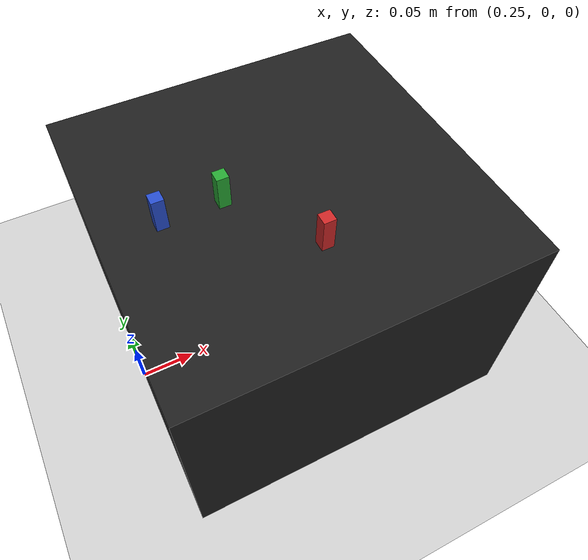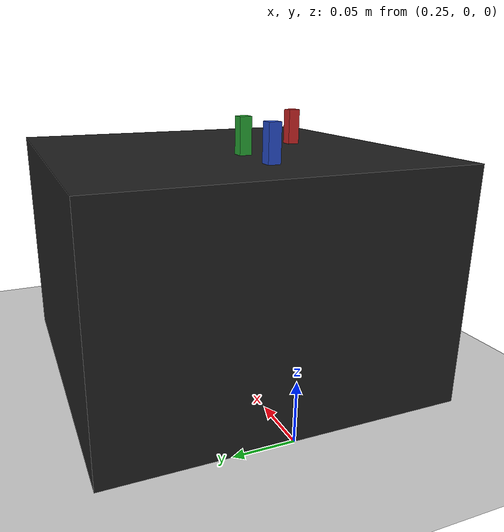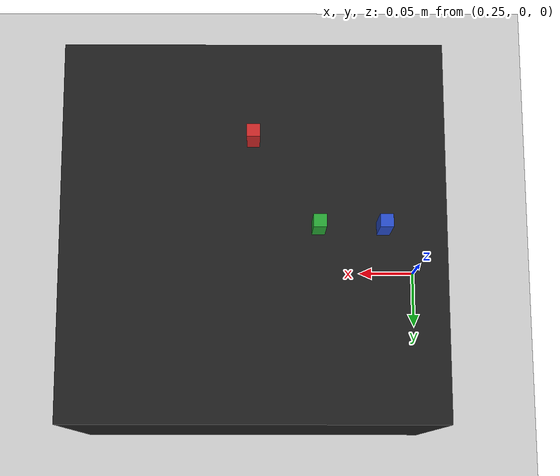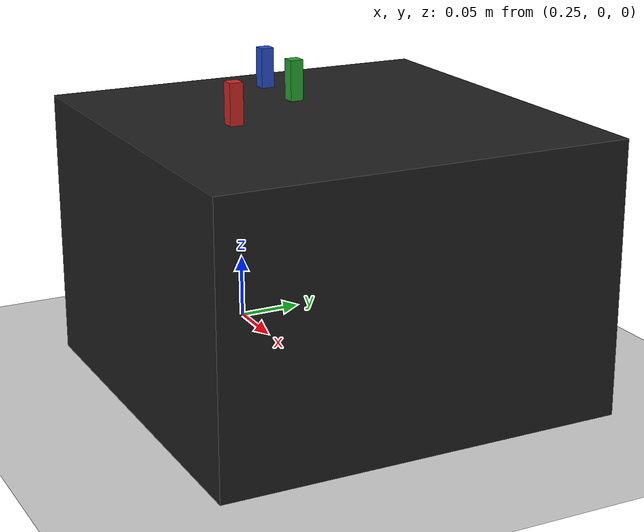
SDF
<?xml version='1.0' ?>
<sdf version='1.4'>
  <world name='empty'>
    <!-- A global light source -->
    <include>
      <uri>model://sun</uri>
    </include>

    <!-- A ground plane -->
    <include>
      <uri>model://ground_plane</uri>
    </include>

    <!-- Physics settings for simulation -->
    <physics type='ode'>
      <max_step_size>0.001</max_step_size>
      <real_time_factor>1</real_time_factor>
      <real_time_update_rate>1000</real_time_update_rate>
      <gravity>0 0 -9.81</gravity>
    </physics>

    <model name='box_1'>
      <pose frame=''>0.30 0.0 0.2165 0 0 0</pose>
      <link name='link'>
        <inertial>
          <mass>0.01</mass>
          <inertia>
            <ixx>0.00166667</ixx>
            <ixy>0</ixy>
            <ixz>0</ixz>
            <iyy>0.00166667</iyy>
            <iyz>0</iyz>
            <izz>0.00506667</izz>
          </inertia>
        </inertial>
        <collision name='collision'>
          <geometry>
            <box>
              <size>0.01 0.01 0.03</size>
            </box>
          </geometry>
          <max_contacts>10</max_contacts>
          <surface>
                   <friction>
                     <ode>
                       <mu>100.0</mu>
                       <mu2>100.0</mu2>
                     </ode>
                   </friction>
                   <contact>
                     <ode>
                       <kp>10000000.0</kp>
                       <kd>1.0</kd>
                       <min_depth>0.001</min_depth>
                       <max_vel>0.1</max_vel>
                     </ode>
                   </contact>
           </surface>
        </collision>
        <visual name='visual'>
          <geometry>
            <box>
              <size>0.01 0.01 0.03</size>
            </box>
          </geometry>
          <material>
            <script>
              <name>Gazebo/Blue</name>
              <uri>file://media/materials/scripts/gazebo.material</uri>
            </script>
          </material>
        </visual>
        <self_collide>0</self_collide>
        <kinematic>0</kinematic>
        <gravity>1</gravity>
         <static>0</static>
      </link>
    </model>

        <model name='box_2'>
       <pose frame=''>0.35 0.0 0.2165 0 0 0</pose>
      <link name='link'>
        <inertial>
          <mass>0.01</mass>
          <inertia>
            <ixx>0.00166667</ixx>
            <ixy>0</ixy>
            <ixz>0</ixz>
            <iyy>0.00166667</iyy>
            <iyz>0</iyz>
            <izz>0.00506667</izz>
          </inertia>
        </inertial>
        <collision name='collision'>
          <geometry>
            <box>
              <size>0.01 0.01 0.03</size>
            </box>
          </geometry>
          <max_contacts>10</max_contacts>
          <surface>
                   <friction>
                     <ode>
                       <mu>100.0</mu>
                       <mu2>100.0</mu2>
                     </ode>
                   </friction>
                   <contact>
                     <ode>
                       <kp>10000000.0</kp>
                       <kd>1.0</kd>
                       <min_depth>0.001</min_depth>
                       <max_vel>0.1</max_vel>
                     </ode>
                   </contact>
           </surface>
        </collision>
        <visual name='visual'>
          <geometry>
            <box>
              <size>0.01 0.01 0.03</size>
            </box>
          </geometry>
          <material>
            <script>
              <name>Gazebo/Green</name>
              <uri>file://media/materials/scripts/gazebo.material</uri>
            </script>
          </material>
        </visual>
        <self_collide>0</self_collide>
        <kinematic>0</kinematic>
        <gravity>1</gravity>
         <static>0</static>
      </link>
    </model>

      <model name='box_3'>
       <pose frame=''>0.40 -0.07 0.2165 0 0 0</pose>
      <link name='link'>
        <inertial>
          <mass>0.01</mass>
          <inertia>
            <ixx>0.00166667</ixx>
            <ixy>0</ixy>
            <ixz>0</ixz>
            <iyy>0.00166667</iyy>
            <iyz>0</iyz>
            <izz>0.00506667</izz>
          </inertia>
        </inertial>
        <collision name='collision'>
          <geometry>
            <box>
              <size>0.01 0.01 0.03</size>
            </box>
          </geometry>
          <max_contacts>10</max_contacts>
          <surface>
                   <friction>
                     <ode>
                       <mu>100.0</mu>
                       <mu2>100.0</mu2>
                     </ode>
                   </friction>
                   <contact>
                     <ode>
                       <kp>10000000.0</kp>
                       <kd>1.0</kd>
                       <min_depth>0.001</min_depth>
                       <max_vel>0.1</max_vel>
                     </ode>
                   </contact>
           </surface>
        </collision>
        <visual name='visual'>
          <geometry>
            <box>
              <size>0.01 0.01 0.03</size>
            </box>
          </geometry>
          <material>
            <script>
              <name>Gazebo/Red</name>
              <uri>file://media/materials/scripts/gazebo.material</uri>
            </script>
          </material>
        </visual>
        <self_collide>0</self_collide>
        <kinematic>0</kinematic>
        <gravity>1</gravity>
         <static>0</static>
      </link>
    </model>

   <model name='table_box_model'>
      <static>true</static>
      <pose frame=''>0.40 0.0 0.1 0 -0 1.5707963265</pose>
      <link name='table_box_link'>
        <inertial>
          <mass>1</mass>
          <inertia>
            <ixx>0.166667</ixx>
            <ixy>0</ixy>
            <ixz>0</ixz>
            <iyy>0.166667</iyy>
            <iyz>0</iyz>
            <izz>0.166667</izz>
          </inertia>
        </inertial>
        <collision name='collision'>
          <geometry>
            <box>
              <size>0.30 0.30 0.2</size>
            </box>
          </geometry>
          <max_contacts>10</max_contacts>
          <surface>
            <contact>
              <ode/>
            </contact>
            <bounce/>
            <friction>
              <ode>
                <mu>0.6</mu>
                <mu2>0.6</mu2>
              </ode>
              <torsional>
                <ode/>
              </torsional>
            </friction>
          </surface>
        </collision>
        <visual name='visual'>
          <geometry>
            <box>
              <size>0.30 0.30 0.2</size>
            </box>
          </geometry>
          <material>
            <script>
              <name>Gazebo/Black</name>
              <uri>file://media/materials/scripts/gazebo.material</uri>
            </script>
          </material>
        </visual>
        <self_collide>0</self_collide>
        <kinematic>0</kinematic>
      </link>
    </model>

  </world>
</sdf>
